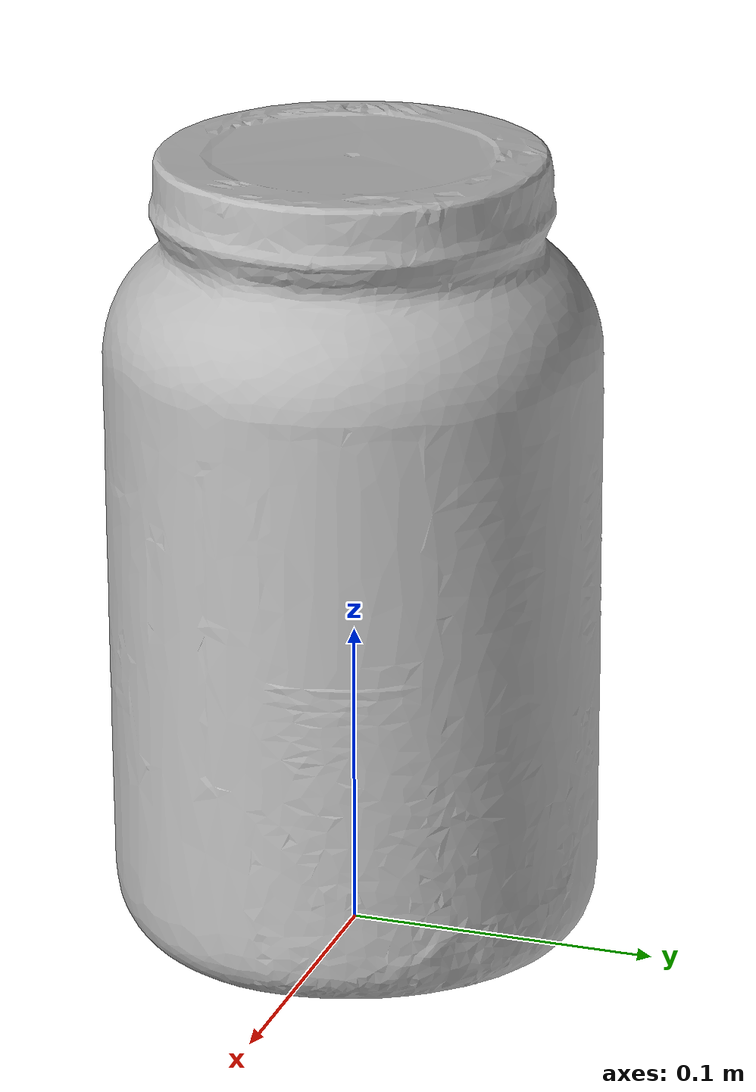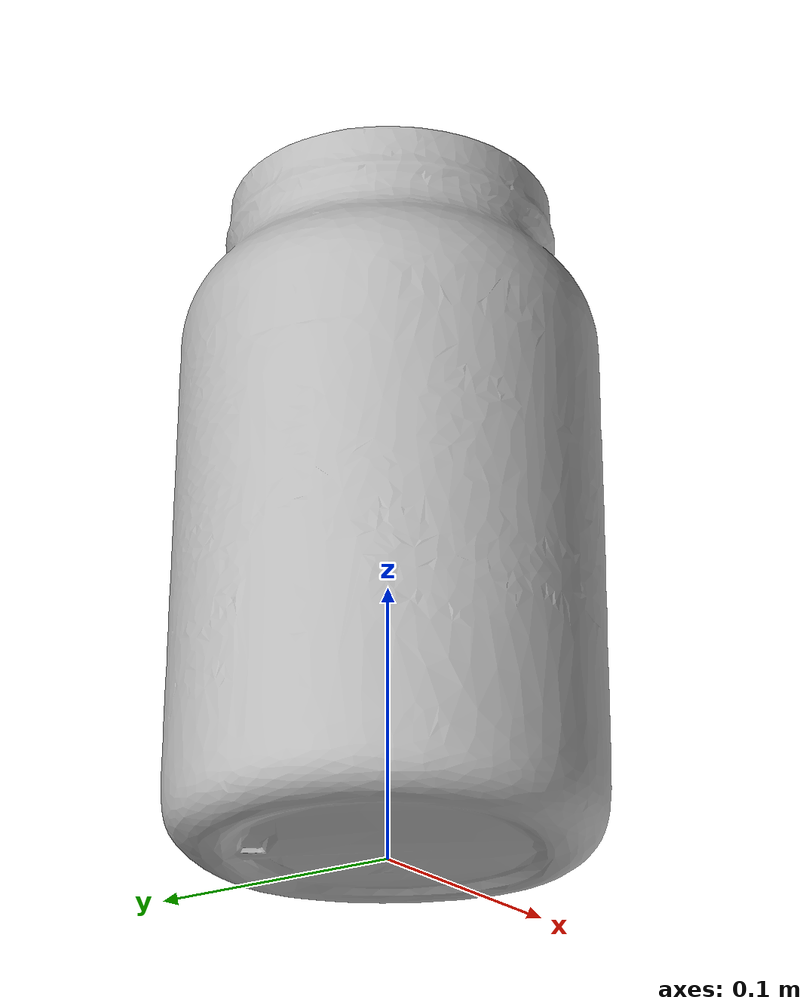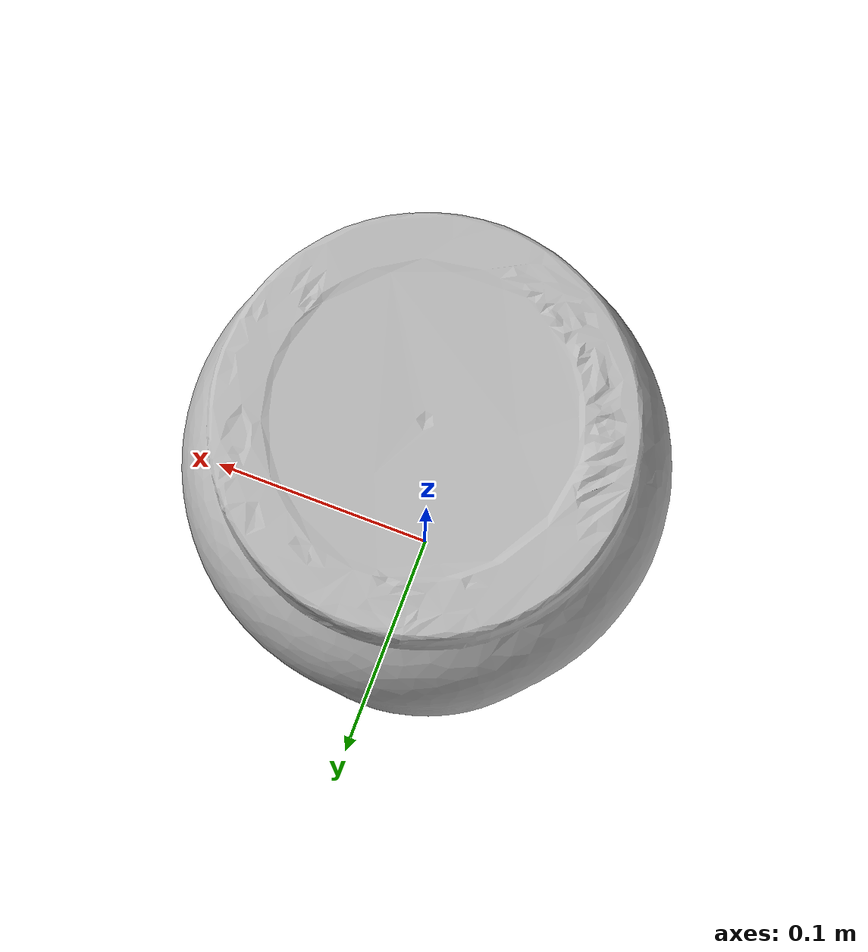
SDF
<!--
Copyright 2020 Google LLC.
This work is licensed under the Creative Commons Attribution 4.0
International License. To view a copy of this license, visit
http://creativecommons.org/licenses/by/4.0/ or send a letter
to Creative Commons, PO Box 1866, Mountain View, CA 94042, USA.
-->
<?xml version="1.0" ?>
<sdf version="1.6">
  <model name="Twinlab_100_Whey_Protein_Fuel_Vanilla">
    <link name="link_0">
      <visual name="visual">
        <geometry>
          <mesh>
            <uri>model://Twinlab_100_Whey_Protein_Fuel_Vanilla/meshes/model.obj</uri>
          </mesh>
        </geometry>
      </visual>
      <collision name="collision_0">
        <geometry>
          <mesh>
            <uri>model://Twinlab_100_Whey_Protein_Fuel_Vanilla/meshes/model.obj</uri>
          </mesh>
        </geometry>
      </collision>
    </link>
  </model>
</sdf>
